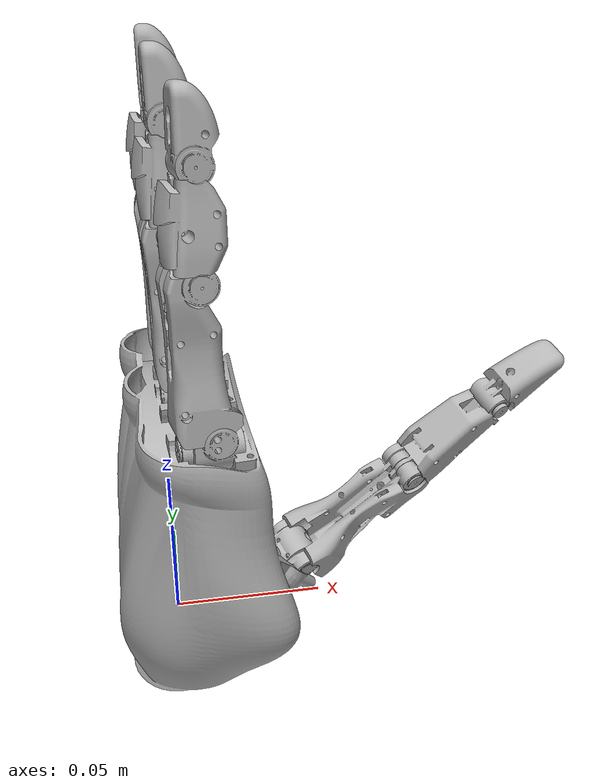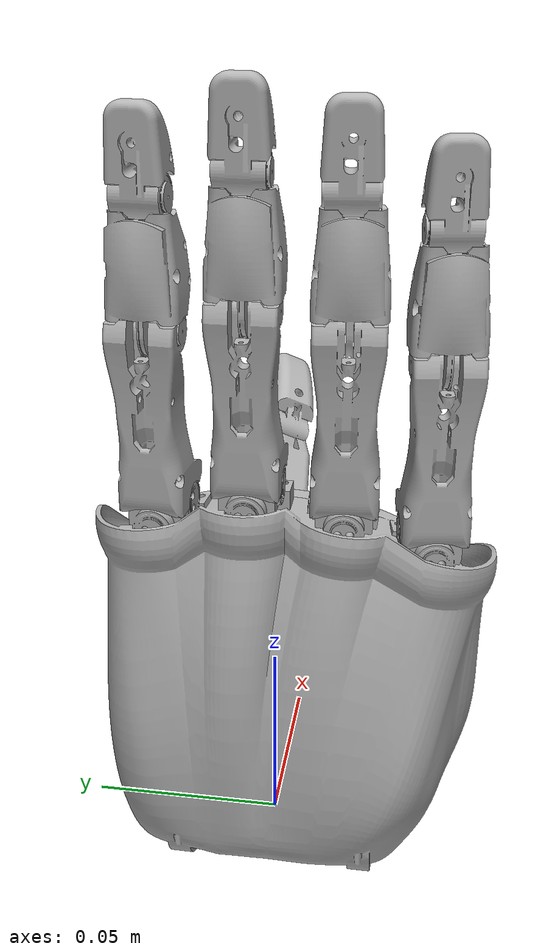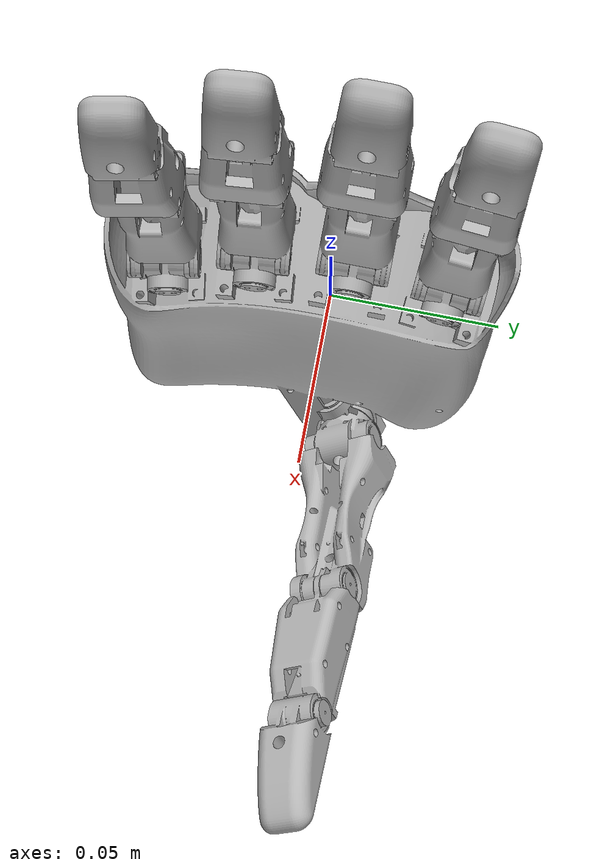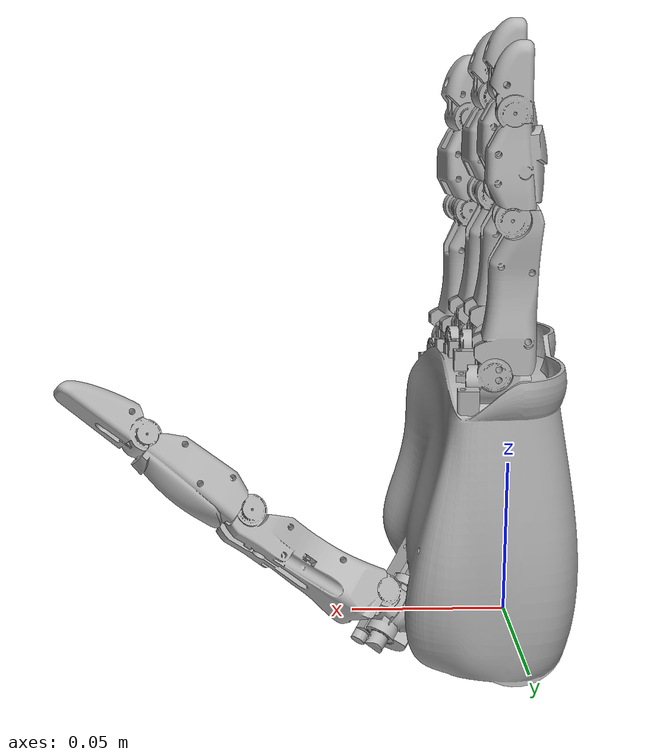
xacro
<?xml version="1.0" ?>
<robot name="dexhandv2_right" xmlns:xacro="http://www.ros.org/wiki/xacro">

<xacro:include filename="$(find dexhandv2_description)/urdf/materials.xacro" />
<xacro:include filename="$(find dexhandv2_description)/urdf/dexhandv2_right.trans" />
<xacro:include filename="$(find dexhandv2_description)/urdf/dexhandv2_right.gazebo" />
<link name="base_link">
  <inertial>
    <origin xyz="0.007689524166402843 -0.0014012994166675186 0.03600705995032628" rpy="0 0 0"/>
    <mass value="2.5693559159130035"/>
    <inertia ixx="0.003206" iyy="0.001945" izz="0.002103" ixy="4.6e-05" iyz="1.6e-05" ixz="5.9e-05"/>
  </inertial>
  <visual>
    <origin xyz="0 0 0" rpy="0 0 0"/>
    <geometry>
      <mesh filename="package://dexhandv2_description/meshes/right/base_link.stl" scale="0.001 0.001 0.001"/>
    </geometry>
    <material name="silver"/>
  </visual>
  <collision>
    <origin xyz="0 0 0" rpy="0 0 0"/>
    <geometry>
      <mesh filename="package://dexhandv2_description/meshes/right/base_link.stl" scale="0.001 0.001 0.001"/>
    </geometry>
  </collision>
</link>

<link name="Index_Knuckle_1">
  <inertial>
    <origin xyz="-0.005617566441979023 -0.004263081858872926 0.024459068475414014" rpy="0 0 0"/>
    <mass value="0.057232258646826684"/>
    <inertia ixx="1.2e-05" iyy="1.1e-05" izz="2e-06" ixy="-0.0" iyz="-0.0" ixz="0.0"/>
  </inertial>
  <visual>
    <origin xyz="-0.010748 -0.034561 -0.088928" rpy="0 0 0"/>
    <geometry>
      <mesh filename="package://dexhandv2_description/meshes/right/Index_Knuckle_1.stl" scale="0.001 0.001 0.001"/>
    </geometry>
    <material name="silver"/>
  </visual>
  <collision>
    <origin xyz="-0.010748 -0.034561 -0.088928" rpy="0 0 0"/>
    <geometry>
      <mesh filename="package://dexhandv2_description/meshes/right/Index_Knuckle_1.stl" scale="0.001 0.001 0.001"/>
    </geometry>
  </collision>
</link>

<link name="Middle_Knuckle_1">
  <inertial>
    <origin xyz="-0.0053423492763846146 -0.004751533136442774 0.02443132246394987" rpy="0 0 0"/>
    <mass value="0.057232258646826684"/>
    <inertia ixx="1.2e-05" iyy="1.1e-05" izz="2e-06" ixy="0.0" iyz="0.0" ixz="0.0"/>
  </inertial>
  <visual>
    <origin xyz="-0.0095 -0.01205 -0.094983" rpy="0 0 0"/>
    <geometry>
      <mesh filename="package://dexhandv2_description/meshes/right/Middle_Knuckle_1.stl" scale="0.001 0.001 0.001"/>
    </geometry>
    <material name="silver"/>
  </visual>
  <collision>
    <origin xyz="-0.0095 -0.01205 -0.094983" rpy="0 0 0"/>
    <geometry>
      <mesh filename="package://dexhandv2_description/meshes/right/Middle_Knuckle_1.stl" scale="0.001 0.001 0.001"/>
    </geometry>
  </collision>
</link>

<link name="Ring_Knuckle_1">
  <inertial>
    <origin xyz="-0.00499536472398323 -0.0051981437287493305 0.024413654590863074" rpy="0 0 0"/>
    <mass value="0.057232258646826684"/>
    <inertia ixx="1.2e-05" iyy="1.1e-05" izz="2e-06" ixy="0.0" iyz="0.0" ixz="0.0"/>
  </inertial>
  <visual>
    <origin xyz="-0.010613 0.010934 -0.091111" rpy="0 0 0"/>
    <geometry>
      <mesh filename="package://dexhandv2_description/meshes/right/Ring_Knuckle_1.stl" scale="0.001 0.001 0.001"/>
    </geometry>
    <material name="silver"/>
  </visual>
  <collision>
    <origin xyz="-0.010613 0.010934 -0.091111" rpy="0 0 0"/>
    <geometry>
      <mesh filename="package://dexhandv2_description/meshes/right/Ring_Knuckle_1.stl" scale="0.001 0.001 0.001"/>
    </geometry>
  </collision>
</link>

<link name="Pinky_Knuckle_1">
  <inertial>
    <origin xyz="-0.003880364603590236 -0.005628060022037279 0.02452073099863339" rpy="0 0 0"/>
    <mass value="0.057232258646826684"/>
    <inertia ixx="1.2e-05" iyy="1.1e-05" izz="2e-06" ixy="0.0" iyz="0.0" ixz="0.0"/>
  </inertial>
  <visual>
    <origin xyz="-0.013596 0.032422 -0.082783" rpy="0 0 0"/>
    <geometry>
      <mesh filename="package://dexhandv2_description/meshes/right/Pinky_Knuckle_1.stl" scale="0.001 0.001 0.001"/>
    </geometry>
    <material name="silver"/>
  </visual>
  <collision>
    <origin xyz="-0.013596 0.032422 -0.082783" rpy="0 0 0"/>
    <geometry>
      <mesh filename="package://dexhandv2_description/meshes/right/Pinky_Knuckle_1.stl" scale="0.001 0.001 0.001"/>
    </geometry>
  </collision>
</link>

<link name="Index_Middle_1">
  <inertial>
    <origin xyz="-0.0013224985762564515 -0.007289279633795293 0.014085325142538463" rpy="0 0 0"/>
    <mass value="0.029055618634630877"/>
    <inertia ixx="2e-06" iyy="2e-06" izz="1e-06" ixy="-0.0" iyz="0.0" ixz="-0.0"/>
  </inertial>
  <visual>
    <origin xyz="-0.007216 -0.037554 -0.133946" rpy="0 0 0"/>
    <geometry>
      <mesh filename="package://dexhandv2_description/meshes/right/Index_Middle_1.stl" scale="0.001 0.001 0.001"/>
    </geometry>
    <material name="silver"/>
  </visual>
  <collision>
    <origin xyz="-0.007216 -0.037554 -0.133946" rpy="0 0 0"/>
    <geometry>
      <mesh filename="package://dexhandv2_description/meshes/right/Index_Middle_1.stl" scale="0.001 0.001 0.001"/>
    </geometry>
  </collision>
</link>

<link name="Middle_Middle_1">
  <inertial>
    <origin xyz="-0.000748200575903267 -0.007382647677029439 0.014078898502378867" rpy="0 0 0"/>
    <mass value="0.029055618634630877"/>
    <inertia ixx="2e-06" iyy="2e-06" izz="1e-06" ixy="0.0" iyz="0.0" ixz="-0.0"/>
  </inertial>
  <visual>
    <origin xyz="-0.0055 -0.0147 -0.139983" rpy="0 0 0"/>
    <geometry>
      <mesh filename="package://dexhandv2_description/meshes/right/Middle_Middle_1.stl" scale="0.001 0.001 0.001"/>
    </geometry>
    <material name="silver"/>
  </visual>
  <collision>
    <origin xyz="-0.0055 -0.0147 -0.139983" rpy="0 0 0"/>
    <geometry>
      <mesh filename="package://dexhandv2_description/meshes/right/Middle_Middle_1.stl" scale="0.001 0.001 0.001"/>
    </geometry>
  </collision>
</link>

<link name="Ring_Middle_1">
  <inertial>
    <origin xyz="-0.0001526105949676516 -0.007419627016542654 0.014078114365207756" rpy="0 0 0"/>
    <mass value="0.029055618634630877"/>
    <inertia ixx="2e-06" iyy="2e-06" izz="1e-06" ixy="0.0" iyz="-0.0" ixz="-0.0"/>
  </inertial>
  <visual>
    <origin xyz="-0.006237 0.008642 -0.136096" rpy="0 0 0"/>
    <geometry>
      <mesh filename="package://dexhandv2_description/meshes/right/Ring_Middle_1.stl" scale="0.001 0.001 0.001"/>
    </geometry>
    <material name="silver"/>
  </visual>
  <collision>
    <origin xyz="-0.006237 0.008642 -0.136096" rpy="0 0 0"/>
    <geometry>
      <mesh filename="package://dexhandv2_description/meshes/right/Ring_Middle_1.stl" scale="0.001 0.001 0.001"/>
    </geometry>
  </collision>
</link>

<link name="Pinky_Middle_1">
  <inertial>
    <origin xyz="0.0008844819690768356 -0.007397505520163869 0.01406265533428308" rpy="0 0 0"/>
    <mass value="0.029055618634630877"/>
    <inertia ixx="2e-06" iyy="2e-06" izz="1e-06" ixy="0.0" iyz="-0.0" ixz="-0.0"/>
  </inertial>
  <visual>
    <origin xyz="-0.010161 0.030528 -0.127868" rpy="0 0 0"/>
    <geometry>
      <mesh filename="package://dexhandv2_description/meshes/right/Pinky_Middle_1.stl" scale="0.001 0.001 0.001"/>
    </geometry>
    <material name="silver"/>
  </visual>
  <collision>
    <origin xyz="-0.010161 0.030528 -0.127868" rpy="0 0 0"/>
    <geometry>
      <mesh filename="package://dexhandv2_description/meshes/right/Pinky_Middle_1.stl" scale="0.001 0.001 0.001"/>
    </geometry>
  </collision>
</link>

<link name="Index_Tip_1">
  <inertial>
    <origin xyz="-0.00031356817587347915 -0.0028006513879080056 0.007069716391178871" rpy="0 0 0"/>
    <mass value="0.018995895295817036"/>
    <inertia ixx="1e-06" iyy="1e-06" izz="0.0" ixy="-0.0" iyz="-0.0" ixz="0.0"/>
  </inertial>
  <visual>
    <origin xyz="-0.006995 -0.03337 -0.163947" rpy="0 0 0"/>
    <geometry>
      <mesh filename="package://dexhandv2_description/meshes/right/Index_Tip_1.stl" scale="0.001 0.001 0.001"/>
    </geometry>
    <material name="silver"/>
  </visual>
  <collision>
    <origin xyz="-0.006995 -0.03337 -0.163947" rpy="0 0 0"/>
    <geometry>
      <mesh filename="package://dexhandv2_description/meshes/right/Index_Tip_1.stl" scale="0.001 0.001 0.001"/>
    </geometry>
  </collision>
</link>

<link name="Midle_Tip_1">
  <inertial>
    <origin xyz="-0.00010202212506613302 -0.002820062193980945 0.007067870395751047" rpy="0 0 0"/>
    <mass value="0.018995895295817036"/>
    <inertia ixx="1e-06" iyy="1e-06" izz="0.0" ixy="0.0" iyz="-0.0" ixz="0.0"/>
  </inertial>
  <visual>
    <origin xyz="-0.0055 -0.0105 -0.169983" rpy="0 0 0"/>
    <geometry>
      <mesh filename="package://dexhandv2_description/meshes/right/Midle_Tip_1.stl" scale="0.001 0.001 0.001"/>
    </geometry>
    <material name="silver"/>
  </visual>
  <collision>
    <origin xyz="-0.0055 -0.0105 -0.169983" rpy="0 0 0"/>
    <geometry>
      <mesh filename="package://dexhandv2_description/meshes/right/Midle_Tip_1.stl" scale="0.001 0.001 0.001"/>
    </geometry>
  </collision>
</link>

<link name="Ring_Tip_1">
  <inertial>
    <origin xyz="0.00011862144140123952 -0.0028181864528833943 0.007068122192193688" rpy="0 0 0"/>
    <mass value="0.018995895295817036"/>
    <inertia ixx="1e-06" iyy="1e-06" izz="0.0" ixy="0.0" iyz="0.0" ixz="0.0"/>
  </inertial>
  <visual>
    <origin xyz="-0.006496 0.012826 -0.166097" rpy="0 0 0"/>
    <geometry>
      <mesh filename="package://dexhandv2_description/meshes/right/Ring_Tip_1.stl" scale="0.001 0.001 0.001"/>
    </geometry>
    <material name="silver"/>
  </visual>
  <collision>
    <origin xyz="-0.006496 0.012826 -0.166097" rpy="0 0 0"/>
    <geometry>
      <mesh filename="package://dexhandv2_description/meshes/right/Ring_Tip_1.stl" scale="0.001 0.001 0.001"/>
    </geometry>
  </collision>
</link>

<link name="Pinky_Tip_1">
  <inertial>
    <origin xyz="0.0005552836495658926 -0.002793482086718077 0.007056916444342365" rpy="0 0 0"/>
    <mass value="0.018995895295817036"/>
    <inertia ixx="1e-06" iyy="1e-06" izz="0.0" ixy="0.0" iyz="0.0" ixz="0.0"/>
  </inertial>
  <visual>
    <origin xyz="-0.011558 0.03466 -0.157845" rpy="0 0 0"/>
    <geometry>
      <mesh filename="package://dexhandv2_description/meshes/right/Pinky_Tip_1.stl" scale="0.001 0.001 0.001"/>
    </geometry>
    <material name="silver"/>
  </visual>
  <collision>
    <origin xyz="-0.011558 0.03466 -0.157845" rpy="0 0 0"/>
    <geometry>
      <mesh filename="package://dexhandv2_description/meshes/right/Pinky_Tip_1.stl" scale="0.001 0.001 0.001"/>
    </geometry>
  </collision>
</link>

<link name="Thumb_Prox_KC_1">
  <inertial>
    <origin xyz="-0.005783732642998508 -0.005234605010581522 0.005230813563652258" rpy="0 0 0"/>
    <mass value="0.010139940256668681"/>
    <inertia ixx="0.0" iyy="0.0" izz="0.0" ixy="-0.0" iyz="0.0" ixz="0.0"/>
  </inertial>
  <visual>
    <origin xyz="-0.042207 -0.017744 0.001358" rpy="0 0 0"/>
    <geometry>
      <mesh filename="package://dexhandv2_description/meshes/right/Thumb_Prox_KC_1.stl" scale="0.001 0.001 0.001"/>
    </geometry>
    <material name="silver"/>
  </visual>
  <collision>
    <origin xyz="-0.042207 -0.017744 0.001358" rpy="0 0 0"/>
    <geometry>
      <mesh filename="package://dexhandv2_description/meshes/right/Thumb_Prox_KC_1.stl" scale="0.001 0.001 0.001"/>
    </geometry>
  </collision>
</link>

<link name="Thumb_Dist_KC_1">
  <inertial>
    <origin xyz="0.007329221379911641 -3.824123206673698e-05 0.005828175487633645" rpy="0 0 0"/>
    <mass value="0.01817352538423656"/>
    <inertia ixx="1e-06" iyy="1e-06" izz="1e-06" ixy="0.0" iyz="-0.0" ixz="-0.0"/>
  </inertial>
  <visual>
    <origin xyz="-0.034982 -0.011946 -0.003792" rpy="0 0 0"/>
    <geometry>
      <mesh filename="package://dexhandv2_description/meshes/right/Thumb_Dist_KC_1.stl" scale="0.001 0.001 0.001"/>
    </geometry>
    <material name="silver"/>
  </visual>
  <collision>
    <origin xyz="-0.034982 -0.011946 -0.003792" rpy="0 0 0"/>
    <geometry>
      <mesh filename="package://dexhandv2_description/meshes/right/Thumb_Dist_KC_1.stl" scale="0.001 0.001 0.001"/>
    </geometry>
  </collision>
</link>

<link name="Thumb_Middle_1">
  <inertial>
    <origin xyz="0.013340941303846623 0.005158352275377089 0.014104228036654974" rpy="0 0 0"/>
    <mass value="0.042415595330021844"/>
    <inertia ixx="3e-06" iyy="5e-06" izz="4e-06" ixy="0.0" iyz="-0.0" ixz="-1e-06"/>
  </inertial>
  <visual>
    <origin xyz="-0.087079 -0.009238 -0.036221" rpy="0 0 0"/>
    <geometry>
      <mesh filename="package://dexhandv2_description/meshes/right/Thumb_Middle_1.stl" scale="0.001 0.001 0.001"/>
    </geometry>
    <material name="silver"/>
  </visual>
  <collision>
    <origin xyz="-0.087079 -0.009238 -0.036221" rpy="0 0 0"/>
    <geometry>
      <mesh filename="package://dexhandv2_description/meshes/right/Thumb_Middle_1.stl" scale="0.001 0.001 0.001"/>
    </geometry>
  </collision>
</link>

<link name="Thumb_Tip_1">
  <inertial>
    <origin xyz="0.007064370889976218 0.005004385415092249 0.009797333101775912" rpy="0 0 0"/>
    <mass value="0.029857587762647974"/>
    <inertia ixx="1e-06" iyy="3e-06" izz="2e-06" ixy="0.0" iyz="-0.0" ixz="-1e-06"/>
  </inertial>
  <visual>
    <origin xyz="-0.118585 -0.009114 -0.060866" rpy="0 0 0"/>
    <geometry>
      <mesh filename="package://dexhandv2_description/meshes/right/Thumb_Tip_1.stl" scale="0.001 0.001 0.001"/>
    </geometry>
    <material name="silver"/>
  </visual>
  <collision>
    <origin xyz="-0.118585 -0.009114 -0.060866" rpy="0 0 0"/>
    <geometry>
      <mesh filename="package://dexhandv2_description/meshes/right/Thumb_Tip_1.stl" scale="0.001 0.001 0.001"/>
    </geometry>
  </collision>
</link>

<link name="Index_Knuckle_Cross_1">
  <inertial>
    <origin xyz="-0.008236768026459555 0.0007243561838455627 0.0016005367483632044" rpy="0 0 0"/>
    <mass value="0.018067034327727577"/>
    <inertia ixx="1e-06" iyy="1e-06" izz="1e-06" ixy="0.0" iyz="0.0" ixz="-0.0"/>
  </inertial>
  <visual>
    <origin xyz="-0.01778 -0.029123 -0.084894" rpy="0 0 0"/>
    <geometry>
      <mesh filename="package://dexhandv2_description/meshes/right/Index_Knuckle_Cross_1.stl" scale="0.001 0.001 0.001"/>
    </geometry>
    <material name="silver"/>
  </visual>
  <collision>
    <origin xyz="-0.01778 -0.029123 -0.084894" rpy="0 0 0"/>
    <geometry>
      <mesh filename="package://dexhandv2_description/meshes/right/Index_Knuckle_Cross_1.stl" scale="0.001 0.001 0.001"/>
    </geometry>
  </collision>
</link>

<link name="Middle_Knuckle_Cross_1">
  <inertial>
    <origin xyz="-0.008276004065600816 3.318801662134663e-08 0.001560707543851736" rpy="0 0 0"/>
    <mass value="0.018067034327727577"/>
    <inertia ixx="1e-06" iyy="1e-06" izz="1e-06" ixy="0.0" iyz="0.0" ixz="-0.0"/>
  </inertial>
  <visual>
    <origin xyz="-0.017 -0.00725 -0.090983" rpy="0 0 0"/>
    <geometry>
      <mesh filename="package://dexhandv2_description/meshes/right/Middle_Knuckle_Cross_1.stl" scale="0.001 0.001 0.001"/>
    </geometry>
    <material name="silver"/>
  </visual>
  <collision>
    <origin xyz="-0.017 -0.00725 -0.090983" rpy="0 0 0"/>
    <geometry>
      <mesh filename="package://dexhandv2_description/meshes/right/Middle_Knuckle_Cross_1.stl" scale="0.001 0.001 0.001"/>
    </geometry>
  </collision>
</link>

<link name="Ring_Knuckle_Cross_1">
  <inertial>
    <origin xyz="-0.008250381618312196 -0.0007200297459291037 0.001531439351922348" rpy="0 0 0"/>
    <mass value="0.018067034327727577"/>
    <inertia ixx="1e-06" iyy="1e-06" izz="1e-06" ixy="-0.0" iyz="-0.0" ixz="-0.0"/>
  </inertial>
  <visual>
    <origin xyz="-0.018517 0.015063 -0.087139" rpy="0 0 0"/>
    <geometry>
      <mesh filename="package://dexhandv2_description/meshes/right/Ring_Knuckle_Cross_1.stl" scale="0.001 0.001 0.001"/>
    </geometry>
    <material name="silver"/>
  </visual>
  <collision>
    <origin xyz="-0.018517 0.015063 -0.087139" rpy="0 0 0"/>
    <geometry>
      <mesh filename="package://dexhandv2_description/meshes/right/Ring_Knuckle_Cross_1.stl" scale="0.001 0.001 0.001"/>
    </geometry>
  </collision>
</link>

<link name="Pinky_Knuckle_Cross_1">
  <inertial>
    <origin xyz="-0.008107321284378135 -0.0014762675960671087 0.001736108452129459" rpy="0 0 0"/>
    <mass value="0.018067034327727577"/>
    <inertia ixx="1e-06" iyy="1e-06" izz="1e-06" ixy="-0.0" iyz="-0.0" ixz="-0.0"/>
  </inertial>
  <visual>
    <origin xyz="-0.021743 0.035807 -0.078606" rpy="0 0 0"/>
    <geometry>
      <mesh filename="package://dexhandv2_description/meshes/right/Pinky_Knuckle_Cross_1.stl" scale="0.001 0.001 0.001"/>
    </geometry>
    <material name="silver"/>
  </visual>
  <collision>
    <origin xyz="-0.021743 0.035807 -0.078606" rpy="0 0 0"/>
    <geometry>
      <mesh filename="package://dexhandv2_description/meshes/right/Pinky_Knuckle_Cross_1.stl" scale="0.001 0.001 0.001"/>
    </geometry>
  </collision>
</link>

<link name="Thumb_Knuckle_1">
  <inertial>
    <origin xyz="0.02583903164988658 -0.0052219176801160255 0.007683620189067311" rpy="0 0 0"/>
    <mass value="0.06613687822002302"/>
    <inertia ixx="9e-06" iyy="1.8e-05" izz="1.3e-05" ixy="0.0" iyz="-1e-06" ixz="-7e-06"/>
  </inertial>
  <visual>
    <origin xyz="-0.040224 -0.020046 -0.014926" rpy="0 0 0"/>
    <geometry>
      <mesh filename="package://dexhandv2_description/meshes/right/Thumb_Knuckle_1.stl" scale="0.001 0.001 0.001"/>
    </geometry>
    <material name="silver"/>
  </visual>
  <collision>
    <origin xyz="-0.040224 -0.020046 -0.014926" rpy="0 0 0"/>
    <geometry>
      <mesh filename="package://dexhandv2_description/meshes/right/Thumb_Knuckle_1.stl" scale="0.001 0.001 0.001"/>
    </geometry>
  </collision>
</link>

<joint name="R_Index_Pitch" type="revolute">
  <origin xyz="-0.007032 0.005438 0.004034" rpy="0 0 0"/>
  <parent link="Index_Knuckle_Cross_1"/>
  <child link="Index_Knuckle_1"/>
  <axis xyz="0.087537 0.996161 -0.000428"/>
  <limit upper="1.308997" lower="0.0" effort="100" velocity="100"/>
</joint>

<joint name="R_Middle_Pitch" type="revolute">
  <origin xyz="-0.0075 0.0048 0.004" rpy="0 0 0"/>
  <parent link="Middle_Knuckle_Cross_1"/>
  <child link="Middle_Knuckle_1"/>
  <axis xyz="-0.0 1.0 0.0"/>
  <limit upper="1.308997" lower="0.0" effort="100" velocity="100"/>
</joint>

<joint name="R_Ring_Pitch" type="revolute">
  <origin xyz="-0.007904 0.004129 0.003972" rpy="0 0 0"/>
  <parent link="Ring_Knuckle_Cross_1"/>
  <child link="Ring_Knuckle_1"/>
  <axis xyz="-0.08702 0.996207 -0.00031"/>
  <limit upper="1.308997" lower="0.0" effort="100" velocity="100"/>
</joint>

<joint name="R_Pinky_Pitch" type="revolute">
  <origin xyz="-0.008147 0.003385 0.004177" rpy="0 0 0"/>
  <parent link="Pinky_Knuckle_Cross_1"/>
  <child link="Pinky_Knuckle_1"/>
  <axis xyz="-0.178318 0.983965 0.003854"/>
  <limit upper="1.308997" lower="0.0" effort="100" velocity="100"/>
</joint>

<joint name="R_Index_Flexor" type="revolute">
  <origin xyz="-0.003532 0.002993 0.045018" rpy="0 0 0"/>
  <parent link="Index_Knuckle_1"/>
  <child link="Index_Middle_1"/>
  <axis xyz="0.087537 0.996161 -0.000428"/>
  <limit upper="1.047198" lower="0.0" effort="100" velocity="100"/>
</joint>

<joint name="R_Middle_Flexor" type="revolute">
  <origin xyz="-0.004 0.00265 0.045" rpy="0 0 0"/>
  <parent link="Middle_Knuckle_1"/>
  <child link="Middle_Middle_1"/>
  <axis xyz="-0.0 1.0 0.0"/>
  <limit upper="1.047198" lower="0.0" effort="100" velocity="100"/>
</joint>

<joint name="R_Ring_Flexor" type="revolute">
  <origin xyz="-0.004376 0.002292 0.044985" rpy="0 0 0"/>
  <parent link="Ring_Knuckle_1"/>
  <child link="Ring_Middle_1"/>
  <axis xyz="-0.08702 0.996207 -0.00031"/>
  <limit upper="1.047198" lower="0.0" effort="100" velocity="100"/>
</joint>

<joint name="R_Pinky_Flexor" type="revolute">
  <origin xyz="-0.003435 0.001894 0.045085" rpy="0 0 0"/>
  <parent link="Pinky_Knuckle_1"/>
  <child link="Pinky_Middle_1"/>
  <axis xyz="-0.178318 0.983965 0.003854"/>
  <limit upper="1.047198" lower="0.0" effort="100" velocity="100"/>
</joint>

<joint name="R_Index_DIP" type="revolute">
  <origin xyz="-0.000221 -0.004184 0.030001" rpy="0 0 0"/>
  <parent link="Index_Middle_1"/>
  <child link="Index_Tip_1"/>
  <axis xyz="0.087537 0.996161 -0.000428"/>
  <limit upper="1.047198" lower="0.0" effort="100" velocity="100"/>
  <mimic joint="Index_Flexor" multiplier="1" offset="0"/>
</joint>

<joint name="R_Middle_DIP" type="revolute">
  <origin xyz="0.0 -0.0042 0.03" rpy="0 0 0"/>
  <parent link="Middle_Middle_1"/>
  <child link="Midle_Tip_1"/>
  <axis xyz="-0.0 1.0 0.0"/>
  <limit upper="1.047198" lower="0.0" effort="100" velocity="100"/>
  <mimic joint="Middle_Flexor" multiplier="1" offset="0"/>
</joint>

<joint name="R_Ring_DIP" type="revolute">
  <origin xyz="0.000259 -0.004184 0.030001" rpy="0 0 0"/>
  <parent link="Ring_Middle_1"/>
  <child link="Ring_Tip_1"/>
  <axis xyz="-0.08702 0.996207 -0.00031"/>
  <limit upper="1.047198" lower="0.0" effort="100" velocity="100"/>
  <mimic joint="Ring_Flexor" multiplier="1" offset="0"/>
</joint>

<joint name="R_Pinky_DIP" type="revolute">
  <origin xyz="0.001397 -0.004132 0.029977" rpy="0 0 0"/>
  <parent link="Pinky_Middle_1"/>
  <child link="Pinky_Tip_1"/>
  <axis xyz="-0.178318 0.983965 0.003854"/>
  <limit upper="1.047198" lower="0.0" effort="100" velocity="100"/>
  <mimic joint="Pinky_Flexor" multiplier="1" offset="0"/>
</joint>

<joint name="R_Thumb_Yaw" type="revolute">
  <origin xyz="0.042207 0.017744 -0.001358" rpy="0 0 0"/>
  <parent link="base_link"/>
  <child link="Thumb_Prox_KC_1"/>
  <axis xyz="0.510615 0.562877 -0.649955"/>
  <limit upper="0.523599" lower="-0.523599" effort="100" velocity="100"/>
</joint>

<joint name="R_Thumb_Roll" type="revolute">
  <origin xyz="-0.007225 -0.005798 0.00515" rpy="0 0 0"/>
  <parent link="Thumb_Prox_KC_1"/>
  <child link="Thumb_Dist_KC_1"/>
  <axis xyz="0.786356 -0.0 0.617773"/>
  <limit upper="0.349066" lower="-0.349066" effort="100" velocity="100"/>
</joint>

<joint name="R_Thumb_Flexor" type="revolute">
  <origin xyz="0.046855 -0.010808 0.021295" rpy="0 0 0"/>
  <parent link="Thumb_Knuckle_1"/>
  <child link="Thumb_Middle_1"/>
  <axis xyz="0.34773 -0.826541 -0.442622"/>
  <limit upper="1.047198" lower="0.0" effort="100" velocity="100"/>
</joint>

<joint name="R_Thumb_DIP" type="revolute">
  <origin xyz="0.031506 -0.000124 0.024645" rpy="0 0 0"/>
  <parent link="Thumb_Middle_1"/>
  <child link="Thumb_Tip_1"/>
  <axis xyz="0.34773 -0.826541 -0.442622"/>
  <limit upper="1.047198" lower="0.0" effort="100" velocity="100"/>
  <mimic joint="Thumb_Flexor" multiplier="1" offset="0"/>
</joint>

<joint name="R_Index_Yaw" type="revolute">
  <origin xyz="0.01778 0.029123 0.084894" rpy="0 0 0"/>
  <parent link="base_link"/>
  <child link="Index_Knuckle_Cross_1"/>
  <axis xyz="0.996149 -0.087538 -0.004875"/>
  <limit upper="0.349066" lower="-0.349066" effort="100" velocity="100"/>
</joint>

<joint name="R_Middle_Yaw" type="revolute">
  <origin xyz="0.017 0.00725 0.090983" rpy="0 0 0"/>
  <parent link="base_link"/>
  <child link="Middle_Knuckle_Cross_1"/>
  <axis xyz="1.0 0.0 -0.0"/>
  <limit upper="0.349066" lower="-0.349066" effort="100" velocity="100"/>
</joint>

<joint name="R_Ring_Yaw" type="revolute">
  <origin xyz="0.018517 -0.015063 0.087139" rpy="0 0 0"/>
  <parent link="base_link"/>
  <child link="Ring_Knuckle_Cross_1"/>
  <axis xyz="0.9962 0.08702 0.003551"/>
  <limit upper="0.349066" lower="-0.349066" effort="100" velocity="100"/>
</joint>

<joint name="R_Pinky_Yaw" type="revolute">
  <origin xyz="0.021743 -0.035807 0.078606" rpy="0 0 0"/>
  <parent link="base_link"/>
  <child link="Pinky_Knuckle_Cross_1"/>
  <axis xyz="0.983736 0.178359 -0.021263"/>
  <limit upper="0.349066" lower="-0.349066" effort="100" velocity="100"/>
</joint>

<joint name="R_Thumb_Pitch" type="revolute">
  <origin xyz="0.005242 0.0081 0.011134" rpy="0 0 0"/>
  <parent link="Thumb_Dist_KC_1"/>
  <child link="Thumb_Knuckle_1"/>
  <axis xyz="0.34773 -0.826541 -0.442622"/>
  <limit upper="1.047198" lower="0.0" effort="100" velocity="100"/>
</joint>

</robot>

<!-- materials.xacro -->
<robot name="dexhandv2_cobot_right" xmlns:xacro="http://www.ros.org/wiki/xacro" >

<material name="silver">
  <color rgba="0.700 0.700 0.700 1.000"/>
</material>

</robot>

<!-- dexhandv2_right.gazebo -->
<robot name="dexhandv2_right" xmlns:xacro="http://www.ros.org/wiki/xacro" >

<xacro:property name="body_color" value="Gazebo/Silver" />

<gazebo>
  <plugin name="control" filename="libgazebo_ros_control.so"/>
</gazebo>
<gazebo reference="base_link">
  <material>${body_color}</material>
  <mu1>0.2</mu1>
  <mu2>0.2</mu2>
  <selfCollide>true</selfCollide>
  <gravity>true</gravity>
</gazebo>

<gazebo reference="Index_Knuckle_1">
  <material>${body_color}</material>
  <mu1>0.2</mu1>
  <mu2>0.2</mu2>
  <selfCollide>true</selfCollide>
</gazebo>

<gazebo reference="Middle_Knuckle_1">
  <material>${body_color}</material>
  <mu1>0.2</mu1>
  <mu2>0.2</mu2>
  <selfCollide>true</selfCollide>
</gazebo>

<gazebo reference="Ring_Knuckle_1">
  <material>${body_color}</material>
  <mu1>0.2</mu1>
  <mu2>0.2</mu2>
  <selfCollide>true</selfCollide>
</gazebo>

<gazebo reference="Pinky_Knuckle_1">
  <material>${body_color}</material>
  <mu1>0.2</mu1>
  <mu2>0.2</mu2>
  <selfCollide>true</selfCollide>
</gazebo>

<gazebo reference="Index_Middle_1">
  <material>${body_color}</material>
  <mu1>0.2</mu1>
  <mu2>0.2</mu2>
  <selfCollide>true</selfCollide>
</gazebo>

<gazebo reference="Middle_Middle_1">
  <material>${body_color}</material>
  <mu1>0.2</mu1>
  <mu2>0.2</mu2>
  <selfCollide>true</selfCollide>
</gazebo>

<gazebo reference="Ring_Middle_1">
  <material>${body_color}</material>
  <mu1>0.2</mu1>
  <mu2>0.2</mu2>
  <selfCollide>true</selfCollide>
</gazebo>

<gazebo reference="Pinky_Middle_1">
  <material>${body_color}</material>
  <mu1>0.2</mu1>
  <mu2>0.2</mu2>
  <selfCollide>true</selfCollide>
</gazebo>

<gazebo reference="Index_Tip_1">
  <material>${body_color}</material>
  <mu1>0.2</mu1>
  <mu2>0.2</mu2>
  <selfCollide>true</selfCollide>
</gazebo>

<gazebo reference="Midle_Tip_1">
  <material>${body_color}</material>
  <mu1>0.2</mu1>
  <mu2>0.2</mu2>
  <selfCollide>true</selfCollide>
</gazebo>

<gazebo reference="Ring_Tip_1">
  <material>${body_color}</material>
  <mu1>0.2</mu1>
  <mu2>0.2</mu2>
  <selfCollide>true</selfCollide>
</gazebo>

<gazebo reference="Pinky_Tip_1">
  <material>${body_color}</material>
  <mu1>0.2</mu1>
  <mu2>0.2</mu2>
  <selfCollide>true</selfCollide>
</gazebo>

<gazebo reference="Thumb_Prox_KC_1">
  <material>${body_color}</material>
  <mu1>0.2</mu1>
  <mu2>0.2</mu2>
  <selfCollide>true</selfCollide>
</gazebo>

<gazebo reference="Thumb_Dist_KC_1">
  <material>${body_color}</material>
  <mu1>0.2</mu1>
  <mu2>0.2</mu2>
  <selfCollide>true</selfCollide>
</gazebo>

<gazebo reference="Thumb_Middle_1">
  <material>${body_color}</material>
  <mu1>0.2</mu1>
  <mu2>0.2</mu2>
  <selfCollide>true</selfCollide>
</gazebo>

<gazebo reference="Thumb_Tip_1">
  <material>${body_color}</material>
  <mu1>0.2</mu1>
  <mu2>0.2</mu2>
  <selfCollide>true</selfCollide>
</gazebo>

<gazebo reference="Index_Knuckle_Cross_1">
  <material>${body_color}</material>
  <mu1>0.2</mu1>
  <mu2>0.2</mu2>
  <selfCollide>true</selfCollide>
</gazebo>

<gazebo reference="Middle_Knuckle_Cross_1">
  <material>${body_color}</material>
  <mu1>0.2</mu1>
  <mu2>0.2</mu2>
  <selfCollide>true</selfCollide>
</gazebo>

<gazebo reference="Ring_Knuckle_Cross_1">
  <material>${body_color}</material>
  <mu1>0.2</mu1>
  <mu2>0.2</mu2>
  <selfCollide>true</selfCollide>
</gazebo>

<gazebo reference="Pinky_Knuckle_Cross_1">
  <material>${body_color}</material>
  <mu1>0.2</mu1>
  <mu2>0.2</mu2>
  <selfCollide>true</selfCollide>
</gazebo>

<gazebo reference="Thumb_Knuckle_1">
  <material>${body_color}</material>
  <mu1>0.2</mu1>
  <mu2>0.2</mu2>
  <selfCollide>true</selfCollide>
</gazebo>

</robot>
